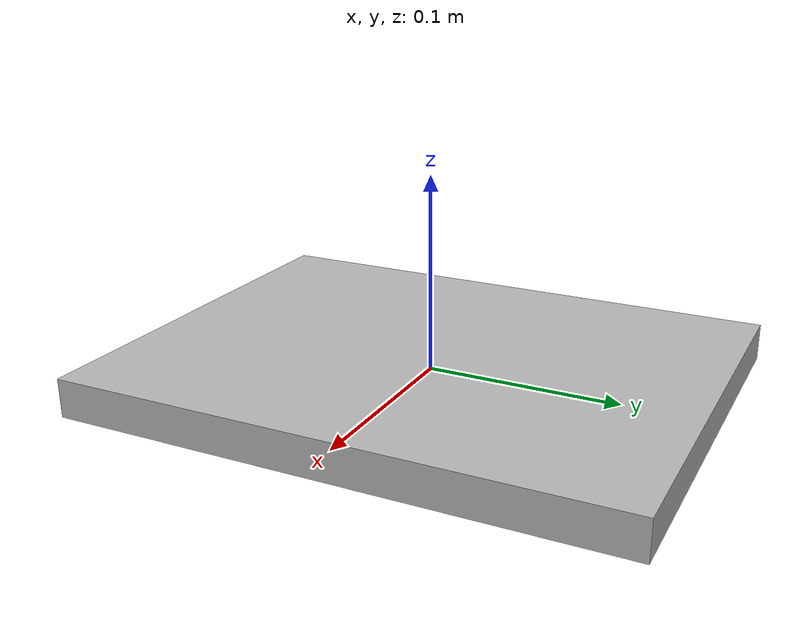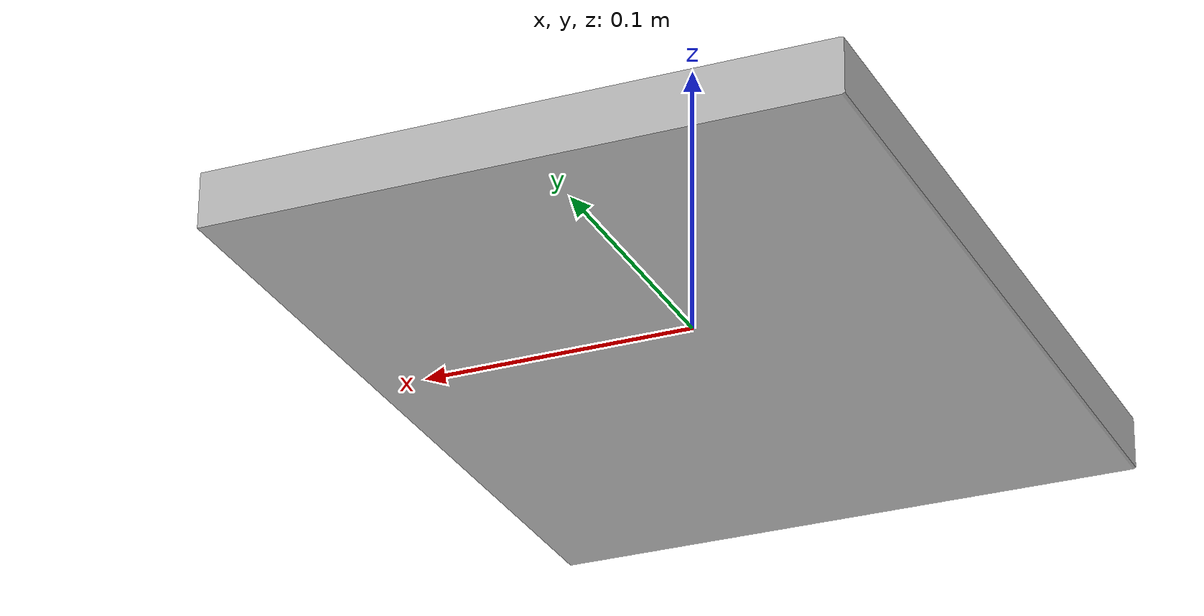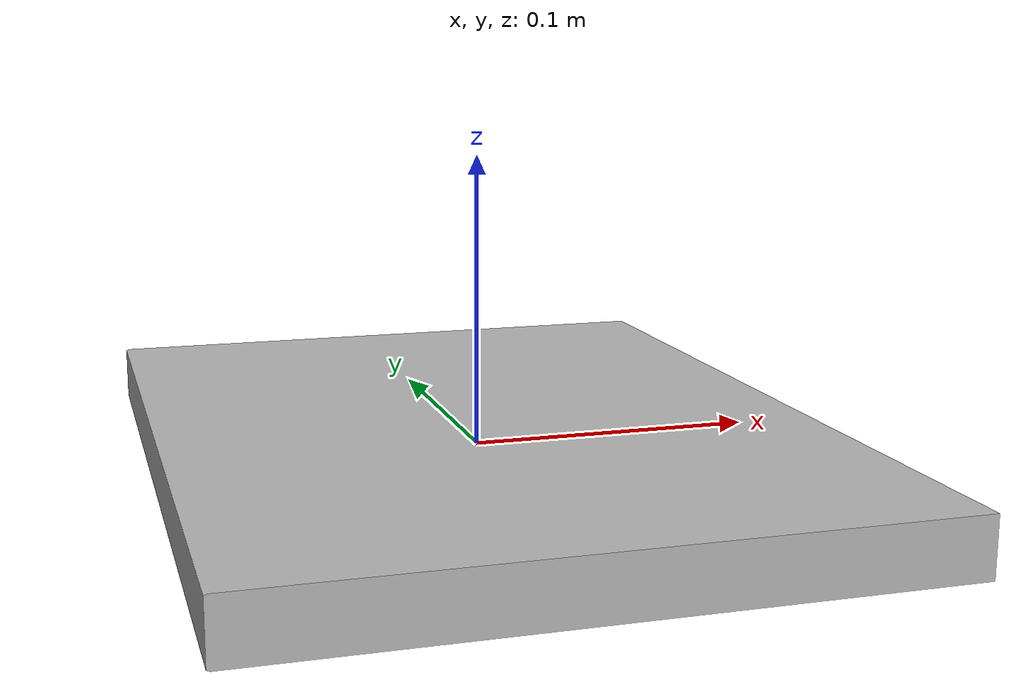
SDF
<?xml version='1.0'?>
<sdf version="1.4">
	<model name="book3">
		<static>1</static>
		<link name="link">
			<visual name="mesh">
				<geometry>
					<mesh>
						<uri>model://meshes/book3.dae</uri>
					</mesh>
				</geometry>
			</visual>
			<collision name="collider">
				<pose>0 0 0 0 0 0</pose>
				<geometry>
					<box>
						<size>0.22 0.288 0.02</size>
					</box>
				</geometry>
			</collision>
		</link>
	</model>
</sdf>
